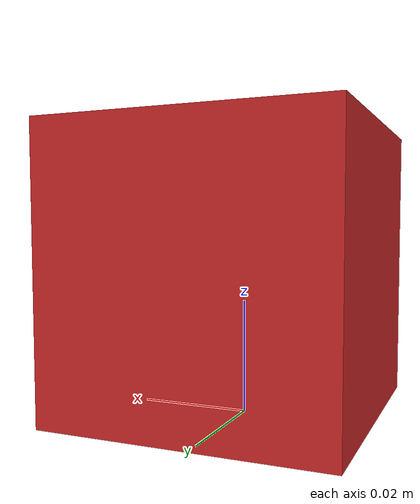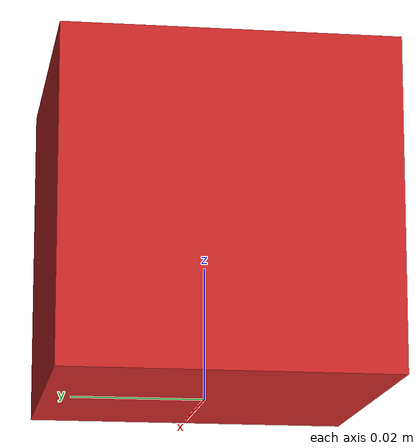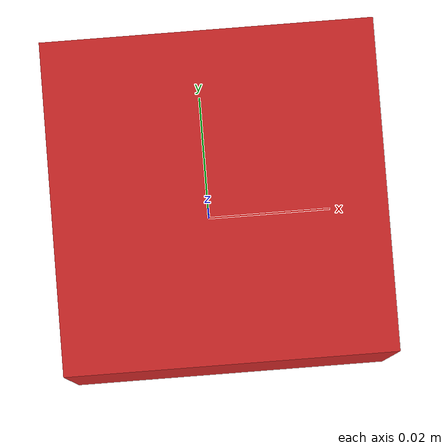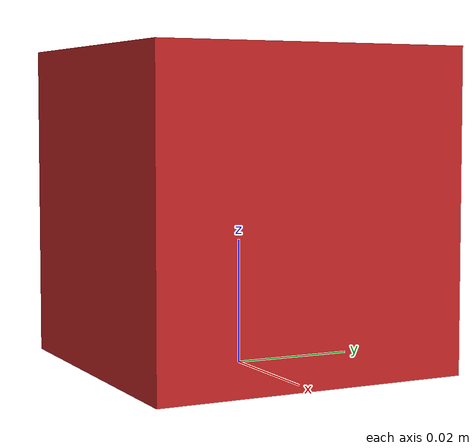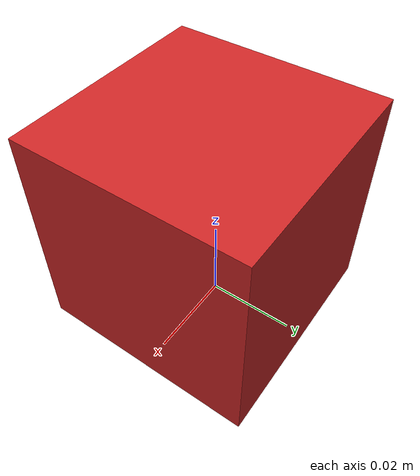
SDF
<?xml version="1.0" ?>
<sdf version="1.5">
  <model name="my1stmodel">
    <static>false</static>
    <link name="link">
      <collision name="collision">
        <geometry>
            <mesh>
                <uri>model://my1stmodel/meshes/shape1.dae</uri>
                <scale>0.001 0.001 0.001</scale>
            </mesh>
        </geometry>
        <surface>
          <friction>
            <ode>
              <mu>100</mu>
              <mu2>50</mu2>
            </ode>
          </friction>
        </surface>
      </collision>
      <visual name="visual">
        <geometry>
            <mesh>
                <uri>model://my1stmodel/meshes/shape1.dae</uri>
                <scale>0.001 0.001 0.001</scale>
            </mesh>
        </geometry>
        <material>
          <script>
            <uri>file://media/materials/scripts/gazebo.material</uri>
            <name>Gazebo/Red</name>
          </script>
        </material>
      </visual>
    </link>
  </model>
</sdf>
